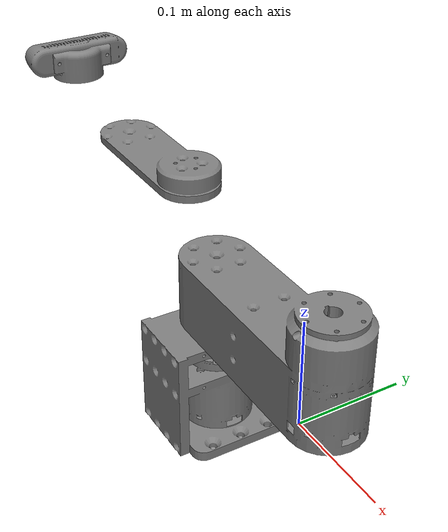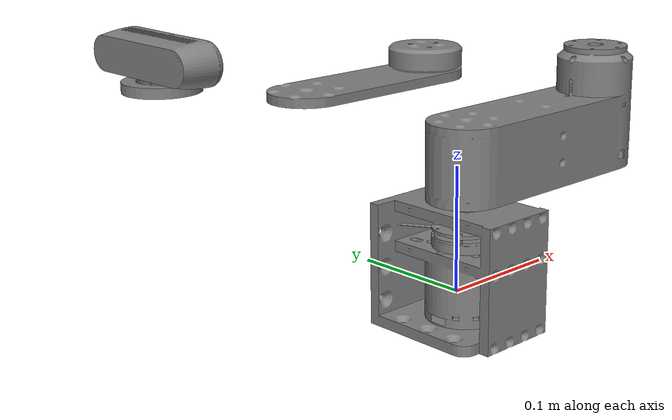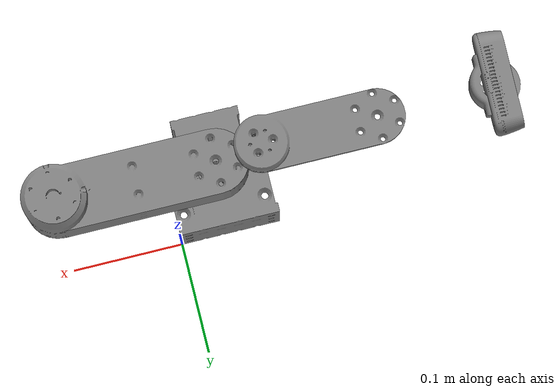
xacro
<?xml version="1.0"?>
<robot name="twolinkbot" xmlns:xacro="http://ros.org/wiki/xacro">

    <xacro:include filename="macros.xacro"/>
  <link name="world">
  </link>

  <joint name="base_joint" type="fixed">
      <parent link="world"/>
      <child link="base_link"/>
  </joint>
  <link name="base_link">
    <visual>
        <origin xyz="0 0 0"/>
        <geometry>
          <mesh
          filename="file://$(find twolink_gazebo)/meshes/base_link.stl" />
        </geometry>
        <material name="grey">
            <color rgba="0.5 0.5 0.5 1.0"/> <!-- 회색 -->
        </material>
    </visual>
    <collision>
        <origin xyz="0 0 0"/>
        <geometry>
          <mesh
          filename="file://$(find twolink_gazebo)/meshes/base_link.stl" />
        </geometry>
    </collision>
    <xacro:inertial_cylinder mass="0.1" length="0.091" radius="0.05">
            <origin xyz="-0.0455 -0.0455 0.0455"/>
    </xacro:inertial_cylinder>
  </link>
  <joint name="joint1" type="continuous">
    <parent link="base_link"/>
    <child link="link1"/>
    <origin xyz="-0.045 -0.05 0.09435"/>
    <axis xyz="0 0 1"/>
  </joint>
  <link name="link1">
    <visual>
        <origin xyz="0 0 0"/>
        <geometry>
          <mesh
          filename="file://$(find twolink_gazebo)/meshes/link1.stl" />
        </geometry>
        <material name="grey">
            <color rgba="0.5 0.5 0.5 1.0"/> <!-- 회색 -->
        </material>
    </visual>
    <collision>
        <origin xyz="0 0 0"/>
        <geometry>
          <mesh
          filename="file://$(find twolink_gazebo)/meshes/link1.stl" />
        </geometry>
    </collision>
    <xacro:inertial_box mass="0.5" x="0.2" y="0.057" z="0.057">
            <origin xyz="-0.0715 0 0.03"/>
    </xacro:inertial_box>
  </link>
  <joint name="joint2" type="continuous">
    <parent link="link1"/>
    <child link="link2"/>
    <origin xyz="-0.143 0 0.09365"/>
    <axis xyz="0 0 1"/>
  </joint>
  <link name="link2">
    <visual>
        <origin xyz="0 0 0"/>
        <geometry>
          <mesh
          filename="file://$(find twolink_gazebo)/meshes/link2.stl" />
        </geometry>
        <material name="grey">
            <color rgba="0.5 0.5 0.5 1.0"/> <!-- 회색 -->
        </material>
    </visual>
    <collision>
        <origin xyz="0 0 0"/>
        <geometry>
          <mesh
          filename="file://$(find twolink_gazebo)/meshes/link2.stl" />
        </geometry>
    </collision>
    <xacro:inertial_box mass="0.2" x="0.15" y="0.048" z="0.006">
            <origin xyz="-0.051 0 0.003"/>
    </xacro:inertial_box>
  </link>

  <joint name="fix_joint" type="fixed">
    <parent link="link2"/>
    <child link="d435_holder"/>
    <origin xyz="-0.102 0 0.021"/>
  </joint>

  <link name="d435_holder">
    <visual>
        <origin xyz="0 0 0" rpy="0 0 3.14159"/>
        <geometry>
          <mesh
          filename="file://$(find twolink_gazebo)/meshes/d435_holder.stl" />
        </geometry>
        <material name="grey">
            <color rgba="0.5 0.5 0.5 1.0"/> <!-- 회색 -->
        </material>
    </visual>
    <collision>
        <origin xyz="0 0 0" rpy="0 0 3.14159"/>
        <geometry>
          <mesh
          filename="file://$(find twolink_gazebo)/meshes/d435_holder.stl" />
        </geometry>
    </collision>
  </link>

  <joint name="fix_joint2" type="fixed">
    <parent link="d435_holder"/>
    <child link="d435"/>
    <origin xyz="0 0 0.006"/>
  </joint>

  <link name="d435">
    <visual>
        <origin xyz="0 0 0" rpy="0 0 3.14159"/>
        <geometry>
          <mesh
          filename="file://$(find twolink_gazebo)/meshes/d435.stl" />
        </geometry>
        <material name="grey">
            <color rgba="0.5 0.5 0.5 1.0"/> <!-- 회색 -->
        </material>
    </visual>
    <collision>
        <origin xyz="0 0 0" rpy="0 0 3.14159"/>
        <geometry>
          <mesh
          filename="file://$(find twolink_gazebo)/meshes/d435.stl" />
        </geometry>
    </collision>
  </link>

  <gazebo reference="link2">
    <material>Gazebo/DarkGrey</material>
  </gazebo>
  <gazebo reference="link1">
    <material>Gazebo/DarkGrey</material>
  </gazebo>
  <gazebo reference="base_link">
    <material>Gazebo/DarkGrey</material>
  </gazebo>
  <gazebo reference="d435_holder">
    <material>Gazebo/DarkGrey</material>
  </gazebo>
  <gazebo reference="d435">
    <material>Gazebo/Grey</material>
  </gazebo>

  <ros2_control name="GazeboSystem" type="system">
    <hardware>
        <plugin>gazebo_ros2_control/GazeboSystem</plugin>
    </hardware>
    <joint name="joint1">
        <command_interface name="position">
        </command_interface>
        <state_interface name="position">
            <param name="initial_value">0</param>
        </state_interface>
        <state_interface name="velocity"/>
        <state_interface name="effort"/>
    </joint>

    <joint name="joint2">
        <command_interface name="position">
        </command_interface>
        <state_interface name="position">
            <param name="initial_value">0</param>
        </state_interface>
        <state_interface name="velocity"/>
        <state_interface name="effort"/>
    </joint>
  </ros2_control>

  <gazebo>
      <plugin filename="libgazebo_ros2_control.so" name="gazebo_ros2_control">
          <parameters>$(find twolink_gazebo)/config/joint_controller.yaml</parameters>
      </plugin>
  </gazebo>
</robot>
